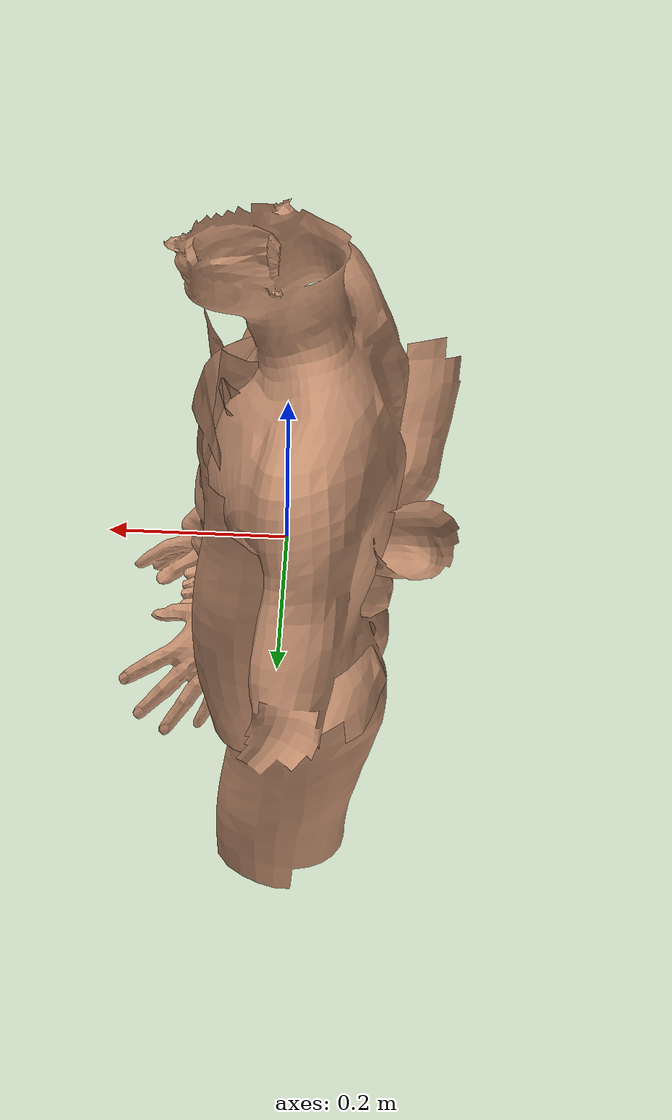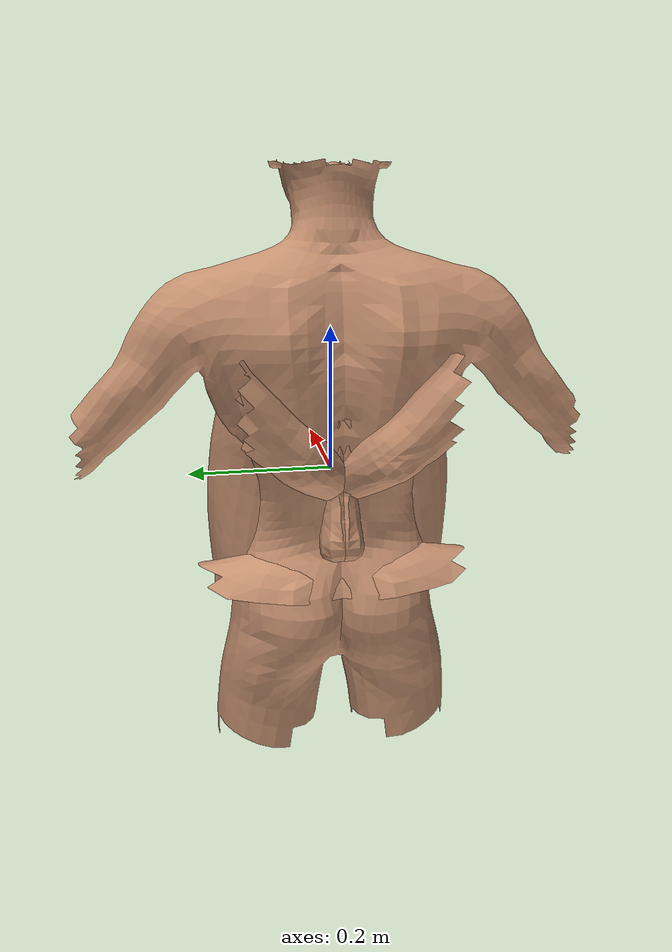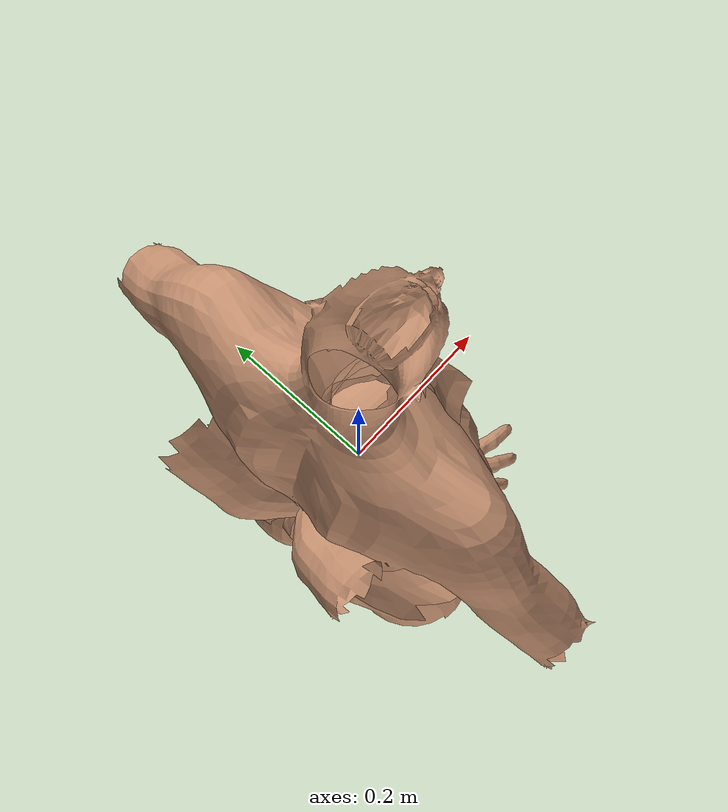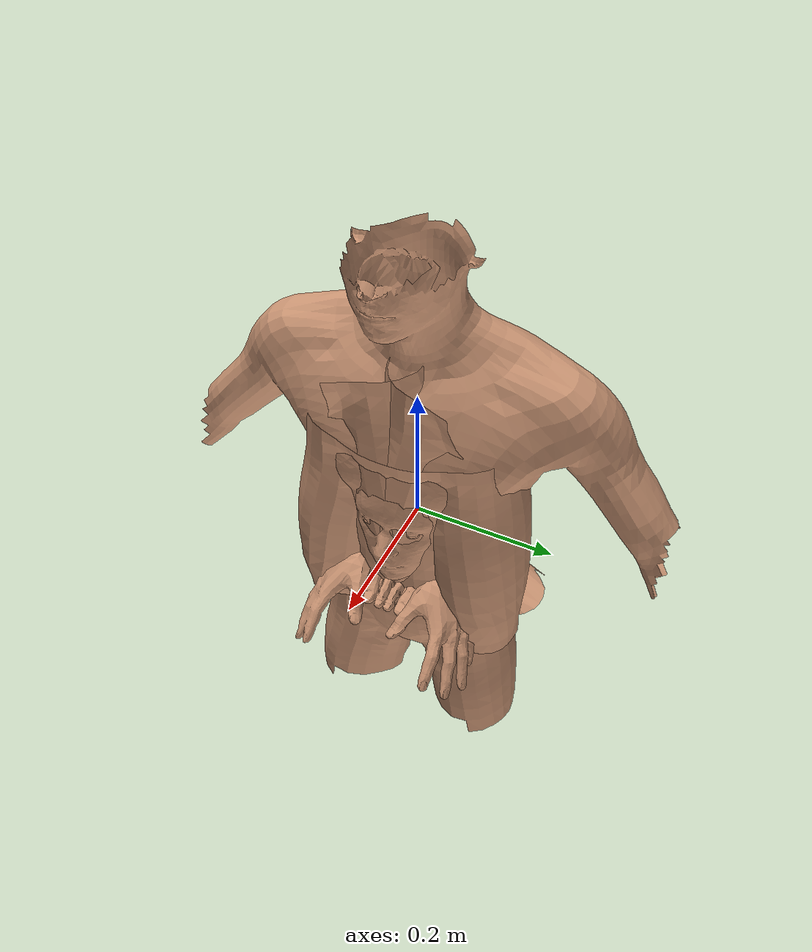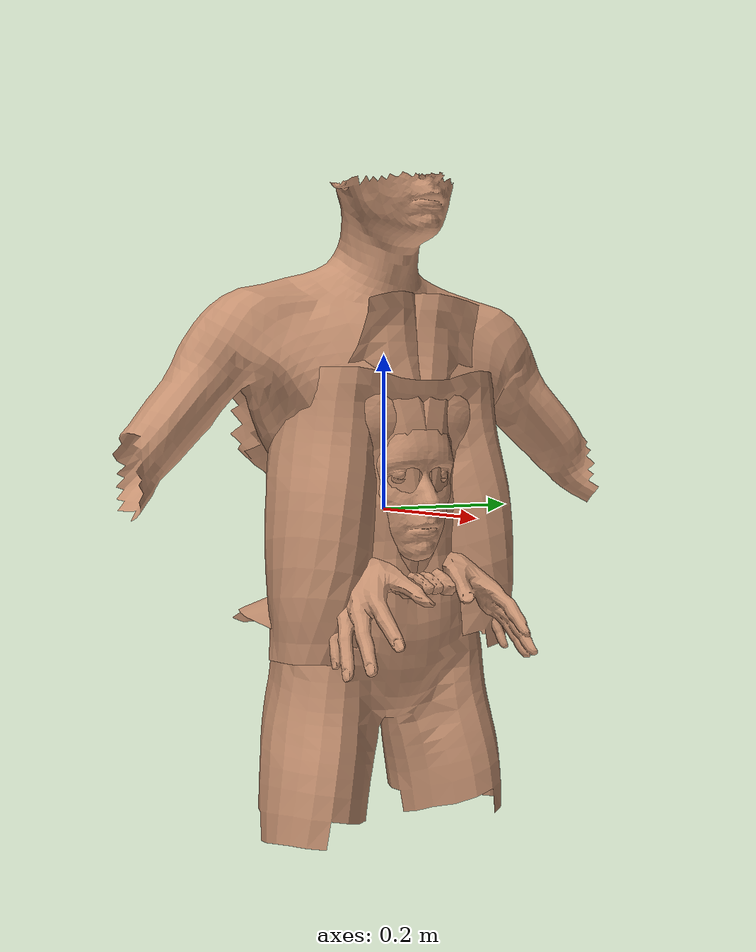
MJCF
<mujoco model="makehuman_cmj_segment_visual">
  <compiler angle="radian" meshdir="segments"/>
  <visual>
    <global offwidth="1280" offheight="720"/>
    <quality shadowsize="2048"/>
    <headlight ambient="0.55 0.55 0.55" diffuse="0.62 0.62 0.62" specular="0.08 0.08 0.08"/>
  </visual>

  <asset>
    <mesh name="mh_head" file="head.obj"/>
    <mesh name="mh_torso" file="torso.obj"/>
    <mesh name="mh_pelvis" file="pelvis.obj"/>
    <mesh name="mh_left_thigh" file="left_thigh.obj"/>
    <mesh name="mh_right_thigh" file="right_thigh.obj"/>
    <mesh name="mh_left_shank" file="left_shank.obj"/>
    <mesh name="mh_right_shank" file="right_shank.obj"/>
    <mesh name="mh_left_foot" file="left_foot.obj"/>
    <mesh name="mh_right_foot" file="right_foot.obj"/>
    <mesh name="mh_left_upper_arm" file="left_upper_arm.obj"/>
    <mesh name="mh_right_upper_arm" file="right_upper_arm.obj"/>
    <mesh name="mh_left_forearm" file="left_forearm.obj"/>
    <mesh name="mh_right_forearm" file="right_forearm.obj"/>
  </asset>

  <default>
    <geom type="mesh" contype="0" conaffinity="0" density="0" group="0"
          rgba="0.79 0.58 0.45 1"/>
  </default>

  <worldbody>
    <body name="mh_head">
      <freejoint name="mh_head_free"/>
      <inertial pos="0 0 0" mass="0.001" diaginertia="0.001 0.001 0.001"/>
      <geom mesh="mh_head"/>
    </body>
    <body name="mh_torso">
      <freejoint name="mh_torso_free"/>
      <inertial pos="0 0 0" mass="0.001" diaginertia="0.001 0.001 0.001"/>
      <geom mesh="mh_torso"/>
    </body>
    <body name="mh_pelvis">
      <freejoint name="mh_pelvis_free"/>
      <inertial pos="0 0 0" mass="0.001" diaginertia="0.001 0.001 0.001"/>
      <geom mesh="mh_pelvis"/>
    </body>
    <body name="mh_left_thigh">
      <freejoint name="mh_left_thigh_free"/>
      <inertial pos="0 0 0" mass="0.001" diaginertia="0.001 0.001 0.001"/>
      <geom mesh="mh_left_thigh"/>
    </body>
    <body name="mh_right_thigh">
      <freejoint name="mh_right_thigh_free"/>
      <inertial pos="0 0 0" mass="0.001" diaginertia="0.001 0.001 0.001"/>
      <geom mesh="mh_right_thigh"/>
    </body>
    <body name="mh_left_shank">
      <freejoint name="mh_left_shank_free"/>
      <inertial pos="0 0 0" mass="0.001" diaginertia="0.001 0.001 0.001"/>
      <geom mesh="mh_left_shank"/>
    </body>
    <body name="mh_right_shank">
      <freejoint name="mh_right_shank_free"/>
      <inertial pos="0 0 0" mass="0.001" diaginertia="0.001 0.001 0.001"/>
      <geom mesh="mh_right_shank"/>
    </body>
    <body name="mh_left_foot">
      <freejoint name="mh_left_foot_free"/>
      <inertial pos="0 0 0" mass="0.001" diaginertia="0.001 0.001 0.001"/>
      <geom mesh="mh_left_foot"/>
    </body>
    <body name="mh_right_foot">
      <freejoint name="mh_right_foot_free"/>
      <inertial pos="0 0 0" mass="0.001" diaginertia="0.001 0.001 0.001"/>
      <geom mesh="mh_right_foot"/>
    </body>
    <body name="mh_left_upper_arm">
      <freejoint name="mh_left_upper_arm_free"/>
      <inertial pos="0 0 0" mass="0.001" diaginertia="0.001 0.001 0.001"/>
      <geom mesh="mh_left_upper_arm"/>
    </body>
    <body name="mh_right_upper_arm">
      <freejoint name="mh_right_upper_arm_free"/>
      <inertial pos="0 0 0" mass="0.001" diaginertia="0.001 0.001 0.001"/>
      <geom mesh="mh_right_upper_arm"/>
    </body>
    <body name="mh_left_forearm">
      <freejoint name="mh_left_forearm_free"/>
      <inertial pos="0 0 0" mass="0.001" diaginertia="0.001 0.001 0.001"/>
      <geom mesh="mh_left_forearm"/>
    </body>
    <body name="mh_right_forearm">
      <freejoint name="mh_right_forearm_free"/>
      <inertial pos="0 0 0" mass="0.001" diaginertia="0.001 0.001 0.001"/>
      <geom mesh="mh_right_forearm"/>
    </body>
  </worldbody>
</mujoco>
